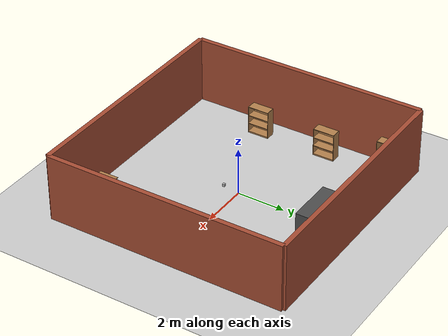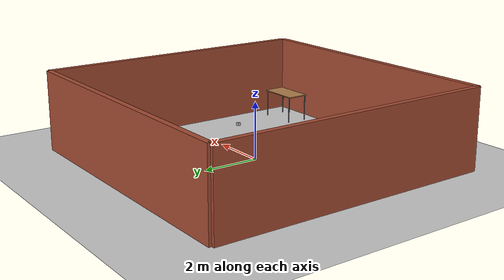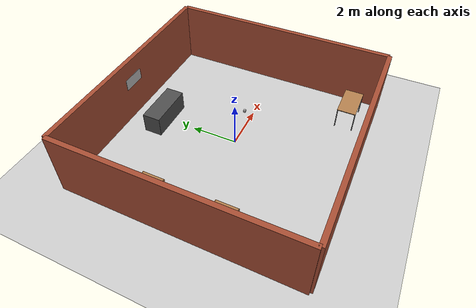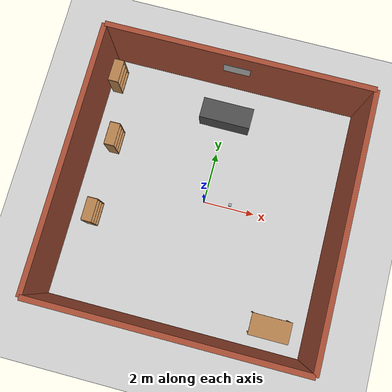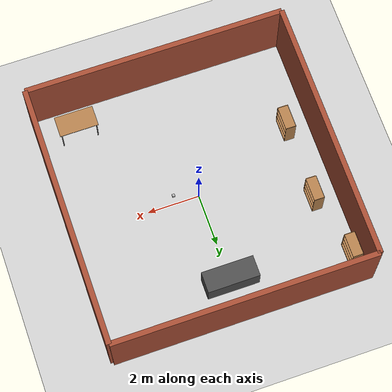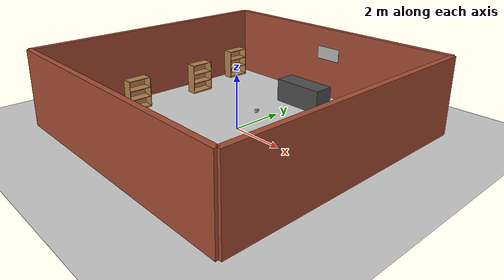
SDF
<sdf version="1.7">
 <world name="ufba_modificado">
  <light name="sun" type="directional">
   <pose>0 0 10 0 -0 0</pose>
   <diffuse>0.8 0.8 0.8 1</diffuse>
   <specular>0.2 0.2 0.2 1</specular>
   <attenuation>
    <range>1000</range>
    <constant>0.9</constant>
    <linear>0.01</linear>
    <quadratic>0.001</quadratic>
   </attenuation>
   <direction>-0.5 0.1 -0.9</direction>
   <spot><inner_angle>0</inner_angle><outer_angle>0</outer_angle><falloff>0</falloff></spot>
  </light>
  <physics type="ode">
   <max_step_size>0.002</max_step_size>
   <real_time_factor>1</real_time_factor>
   <real_time_update_rate>500</real_time_update_rate>
  </physics>
  <scene><ambient>0.4 0.4 0.4 1</ambient><background>0.7 0.7 0.7 1</background><shadows>1</shadows></scene>
  <model name="my_camera">
   <pose>1 0 1 0 0 0</pose>
   <static>true</static>
   <link name="link">
    <visual name="visual"><geometry><box><size>0.1 0.1 0.1</size></box></geometry></visual>
    <sensor name="camera" type="camera">
     <camera name="head">
      <horizontal_fov>1.3962634</horizontal_fov>
      <image><width>800</width><height>800</height><format>R8G8B8</format></image>
      <clip><near>0.02</near><far>300</far></clip>
     </camera>
     <plugin name="camera_controller" filename="libgazebo_ros_camera.so">
      <alwaysOn>true</alwaysOn>
      <updateRate>30.0</updateRate>
      <cameraName>my_camera</cameraName>
      <imageTopicName>image_raw</imageTopicName>
      <cameraInfoTopicName>camera_info</cameraInfoTopicName>
      <frameName>camera_link</frameName>
      <hackBaseline>0.07</hackBaseline>
      <distortionK1>0.0</distortionK1>
      <distortionK2>0.0</distortionK2>
      <distortionK3>0.0</distortionK3>
      <distortionT1>0.0</distortionT1>
      <distortionT2>0.0</distortionT2>
     </plugin>
    </sensor>
   </link>
  </model>
  <model name="ground_plane">
   <static>1</static>
   <link name="link">
    <collision name="collision">
     <geometry><plane><normal>0 0 1</normal><size>100 100</size></plane></geometry>
     <surface>
      <contact><collide_bitmask>65535</collide_bitmask></contact>
      <friction><ode><mu>100</mu><mu2>50</mu2></ode></friction>
     </surface>
    </collision>
    <visual name="visual">
     <cast_shadows>0</cast_shadows>
     <geometry><plane><normal>0 0 1</normal><size>100 100</size></plane></geometry>
     <material>
      <script><uri>file://media/materials/scripts/gazebo.material</uri><name>Gazebo/Grey</name></script>
     </material>
    </visual>
   </link>
  </model>
  <model name="parede_norte">
   <static>1</static>
   <pose>0 5 1.4 0 -0 0</pose>
   <link name="link">
    <collision name="collision"><geometry><box><size>10 0.2 2.8</size></box></geometry></collision>
    <visual name="visual">
     <geometry><box><size>10 0.2 2.8</size></box></geometry>
     <material>
      <script><uri>file://media/materials/scripts/gazebo.material</uri><name>Gazebo/Bricks</name></script>
     </material>
    </visual>
   </link>
  </model>
  <model name="parede_sul">
   <static>1</static>
   <pose>0 -5 1.4 0 -0 0</pose>
   <link name="link">
    <collision name="collision"><geometry><box><size>10 0.2 2.8</size></box></geometry></collision>
    <visual name="visual">
     <geometry><box><size>10 0.2 2.8</size></box></geometry>
     <material>
      <script><uri>file://media/materials/scripts/gazebo.material</uri><name>Gazebo/Bricks</name></script>
     </material>
    </visual>
   </link>
  </model>
  <model name="parede_leste">
   <static>1</static>
   <pose>5 0 1.4 0 -0 1.5707</pose>
   <link name="link">
    <collision name="collision"><geometry><box><size>10 0.2 2.8</size></box></geometry></collision>
    <visual name="visual">
     <geometry><box><size>10 0.2 2.8</size></box></geometry>
     <material>
      <script><uri>file://media/materials/scripts/gazebo.material</uri><name>Gazebo/Bricks</name></script>
     </material>
    </visual>
   </link>
  </model>
  <model name="parede_oeste">
   <static>1</static>
   <pose>-5 0 1.4 0 -0 1.5707</pose>
   <link name="link">
    <collision name="collision"><geometry><box><size>10 0.2 2.8</size></box></geometry></collision>
    <visual name="visual">
     <geometry><box><size>10 0.2 2.8</size></box></geometry>
     <material>
      <script><uri>file://media/materials/scripts/gazebo.material</uri><name>Gazebo/Bricks</name></script>
     </material>
    </visual>
   </link>
  </model>
  <model name="bancada_robo">
   <static>1</static>
   <pose>0 3.5 0.45 0 -0 3.1415</pose>
   <link name="link">
    <collision name="collision"><geometry><box><size>2 0.8 0.9</size></box></geometry></collision>
    <visual name="visual">
     <geometry><box><size>2 0.8 0.9</size></box></geometry>
     <material>
      <script><uri>file://media/materials/scripts/gazebo.material</uri><name>Gazebo/DarkGrey</name></script>
     </material>
    </visual>
   </link>
  </model>
  <model name="prateleira_1">
   <static>1</static>
   <link name="link">
    <inertial><mass>1</mass></inertial>
    <collision name="back">
     <pose>0 0.005 0.6 0 -0 0</pose>
     <geometry><box><size>0.9 0.01 1.2</size></box></geometry>
    </collision>
    <visual name="visual1">
     <pose>0 0.005 0.6 0 -0 0</pose>
     <geometry><box><size>0.9 0.01 1.2</size></box></geometry>
     <material>
      <script><uri>file://media/materials/scripts/gazebo.material</uri><name>Gazebo/Wood</name></script>
     </material>
    </visual>
    <collision name="left_side">
     <pose>0.45 -0.195 0.6 0 -0 0</pose>
     <geometry><box><size>0.02 0.4 1.2</size></box></geometry>
    </collision>
    <visual name="visual2">
     <pose>0.45 -0.195 0.6 0 -0 0</pose>
     <geometry><box><size>0.02 0.4 1.2</size></box></geometry>
     <material>
      <script><uri>file://media/materials/scripts/gazebo.material</uri><name>Gazebo/Wood</name></script>
     </material>
    </visual>
    <collision name="right_side">
     <pose>-0.45 -0.195 0.6 0 -0 0</pose>
     <geometry><box><size>0.02 0.4 1.2</size></box></geometry>
    </collision>
    <visual name="visual3">
     <pose>-0.45 -0.195 0.6 0 -0 0</pose>
     <geometry><box><size>0.02 0.4 1.2</size></box></geometry>
     <material>
      <script><uri>file://media/materials/scripts/gazebo.material</uri><name>Gazebo/Wood</name></script>
     </material>
    </visual>
    <collision name="bottom">
     <pose>0 -0.195 0.03 0 -0 0</pose>
     <geometry><box><size>0.88 0.4 0.06</size></box></geometry>
    </collision>
    <visual name="visual4">
     <pose>0 -0.195 0.03 0 -0 0</pose>
     <geometry><box><size>0.88 0.4 0.06</size></box></geometry>
     <material>
      <script><uri>file://media/materials/scripts/gazebo.material</uri><name>Gazebo/Wood</name></script>
     </material>
    </visual>
    <collision name="top">
     <pose>0 -0.195 1.19 0 -0 0</pose>
     <geometry><box><size>0.88 0.4 0.02</size></box></geometry>
    </collision>
    <visual name="visual5">
     <pose>0 -0.195 1.19 0 -0 0</pose>
     <geometry><box><size>0.88 0.4 0.02</size></box></geometry>
     <material>
      <script><uri>file://media/materials/scripts/gazebo.material</uri><name>Gazebo/Wood</name></script>
     </material>
    </visual>
    <collision name="low_shelf">
     <pose>0 -0.195 0.43 0 -0 0</pose>
     <geometry><box><size>0.88 0.4 0.02</size></box></geometry>
    </collision>
    <visual name="visual6">
     <pose>0 -0.195 0.43 0 -0 0</pose>
     <geometry><box><size>0.88 0.4 0.02</size></box></geometry>
     <material>
      <script><uri>file://media/materials/scripts/gazebo.material</uri><name>Gazebo/Wood</name></script>
     </material>
    </visual>
    <collision name="high_shelf">
     <pose>0 -0.195 0.8 0 -0 0</pose>
     <geometry><box><size>0.88 0.4 0.02</size></box></geometry>
    </collision>
    <visual name="visual7">
     <pose>0 -0.195 0.8 0 -0 0</pose>
     <geometry><box><size>0.88 0.4 0.02</size></box></geometry>
     <material>
      <script><uri>file://media/materials/scripts/gazebo.material</uri><name>Gazebo/Wood</name></script>
     </material>
    </visual>
   </link>
   <pose>-4.2 1.5 0 0 -0 1.5707</pose>
  </model>
  <model name="prateleira_2">
   <static>1</static>
   <link name="link">
    <inertial><mass>1</mass></inertial>
    <collision name="back">
     <pose>0 0.005 0.6 0 -0 0</pose>
     <geometry><box><size>0.9 0.01 1.2</size></box></geometry>
    </collision>
    <visual name="visual1">
     <pose>0 0.005 0.6 0 -0 0</pose>
     <geometry><box><size>0.9 0.01 1.2</size></box></geometry>
     <material>
      <script><uri>file://media/materials/scripts/gazebo.material</uri><name>Gazebo/Wood</name></script>
     </material>
    </visual>
    <collision name="left_side">
     <pose>0.45 -0.195 0.6 0 -0 0</pose>
     <geometry><box><size>0.02 0.4 1.2</size></box></geometry>
    </collision>
    <visual name="visual2">
     <pose>0.45 -0.195 0.6 0 -0 0</pose>
     <geometry><box><size>0.02 0.4 1.2</size></box></geometry>
     <material>
      <script><uri>file://media/materials/scripts/gazebo.material</uri><name>Gazebo/Wood</name></script>
     </material>
    </visual>
    <collision name="right_side">
     <pose>-0.45 -0.195 0.6 0 -0 0</pose>
     <geometry><box><size>0.02 0.4 1.2</size></box></geometry>
    </collision>
    <visual name="visual3">
     <pose>-0.45 -0.195 0.6 0 -0 0</pose>
     <geometry><box><size>0.02 0.4 1.2</size></box></geometry>
     <material>
      <script><uri>file://media/materials/scripts/gazebo.material</uri><name>Gazebo/Wood</name></script>
     </material>
    </visual>
    <collision name="bottom">
     <pose>0 -0.195 0.03 0 -0 0</pose>
     <geometry><box><size>0.88 0.4 0.06</size></box></geometry>
    </collision>
    <visual name="visual4">
     <pose>0 -0.195 0.03 0 -0 0</pose>
     <geometry><box><size>0.88 0.4 0.06</size></box></geometry>
     <material>
      <script><uri>file://media/materials/scripts/gazebo.material</uri><name>Gazebo/Wood</name></script>
     </material>
    </visual>
    <collision name="top">
     <pose>0 -0.195 1.19 0 -0 0</pose>
     <geometry><box><size>0.88 0.4 0.02</size></box></geometry>
    </collision>
    <visual name="visual5">
     <pose>0 -0.195 1.19 0 -0 0</pose>
     <geometry><box><size>0.88 0.4 0.02</size></box></geometry>
     <material>
      <script><uri>file://media/materials/scripts/gazebo.material</uri><name>Gazebo/Wood</name></script>
     </material>
    </visual>
    <collision name="low_shelf">
     <pose>0 -0.195 0.43 0 -0 0</pose>
     <geometry><box><size>0.88 0.4 0.02</size></box></geometry>
    </collision>
    <visual name="visual6">
     <pose>0 -0.195 0.43 0 -0 0</pose>
     <geometry><box><size>0.88 0.4 0.02</size></box></geometry>
     <material>
      <script><uri>file://media/materials/scripts/gazebo.material</uri><name>Gazebo/Wood</name></script>
     </material>
    </visual>
    <collision name="high_shelf">
     <pose>0 -0.195 0.8 0 -0 0</pose>
     <geometry><box><size>0.88 0.4 0.02</size></box></geometry>
    </collision>
    <visual name="visual7">
     <pose>0 -0.195 0.8 0 -0 0</pose>
     <geometry><box><size>0.88 0.4 0.02</size></box></geometry>
     <material>
      <script><uri>file://media/materials/scripts/gazebo.material</uri><name>Gazebo/Wood</name></script>
     </material>
    </visual>
   </link>
   <pose>-4.2 -1.5 0 0 -0 1.5707</pose>
  </model>
  <model name="mesa_escritorio">
   <static>1</static>
   <link name="link">
    <collision name="surface">
     <pose>0 0 1 0 -0 0</pose>
     <geometry><box><size>1.5 0.8 0.03</size></box></geometry>
     <surface><friction><ode><mu>0.6</mu><mu2>0.6</mu2></ode></friction></surface>
    </collision>
    <visual name="visual1">
     <pose>0 0 1 0 -0 0</pose>
     <geometry><box><size>1.5 0.8 0.03</size></box></geometry>
     <material>
      <script><uri>file://media/materials/scripts/gazebo.material</uri><name>Gazebo/Wood</name></script>
     </material>
    </visual>
    <collision name="front_left_leg">
     <pose>0.68 0.38 0.5 0 -0 0</pose>
     <geometry><cylinder><radius>0.02</radius><length>1</length></cylinder></geometry>
    </collision>
    <visual name="front_left_leg">
     <pose>0.68 0.38 0.5 0 -0 0</pose>
     <geometry><cylinder><radius>0.02</radius><length>1</length></cylinder></geometry>
     <material>
      <script><uri>file://media/materials/scripts/gazebo.material</uri><name>Gazebo/Grey</name></script>
     </material>
    </visual>
    <collision name="front_right_leg">
     <pose>0.68 -0.38 0.5 0 -0 0</pose>
     <geometry><cylinder><radius>0.02</radius><length>1</length></cylinder></geometry>
    </collision>
    <visual name="front_right_leg">
     <pose>0.68 -0.38 0.5 0 -0 0</pose>
     <geometry><cylinder><radius>0.02</radius><length>1</length></cylinder></geometry>
     <material>
      <script><uri>file://media/materials/scripts/gazebo.material</uri><name>Gazebo/Grey</name></script>
     </material>
    </visual>
    <collision name="back_right_leg">
     <pose>-0.68 -0.38 0.5 0 -0 0</pose>
     <geometry><cylinder><radius>0.02</radius><length>1</length></cylinder></geometry>
    </collision>
    <visual name="back_right_leg">
     <pose>-0.68 -0.38 0.5 0 -0 0</pose>
     <geometry><cylinder><radius>0.02</radius><length>1</length></cylinder></geometry>
     <material>
      <script><uri>file://media/materials/scripts/gazebo.material</uri><name>Gazebo/Grey</name></script>
     </material>
    </visual>
    <collision name="back_left_leg">
     <pose>-0.68 0.38 0.5 0 -0 0</pose>
     <geometry><cylinder><radius>0.02</radius><length>1</length></cylinder></geometry>
    </collision>
    <visual name="back_left_leg">
     <pose>-0.68 0.38 0.5 0 -0 0</pose>
     <geometry><cylinder><radius>0.02</radius><length>1</length></cylinder></geometry>
     <material>
      <script><uri>file://media/materials/scripts/gazebo.material</uri><name>Gazebo/Grey</name></script>
     </material>
    </visual>
   </link>
   <pose>3.5 -4 0 0 -0 0</pose>
  </model>
  <model name="placa_ufba_na_parede">
   <static>1</static>
   <pose>0 4.89 1.8 0 -0 0</pose>
   <link name="link">
    <visual name="visual">
     <geometry><box><size>1.024 0.01 0.512</size></box></geometry>
     <material>
      <script><uri>file://materials/scripts/ufba_logo.material</uri><name>Ufba/Logo</name></script>
     </material>
    </visual>
   </link>
  </model>
  <gravity>0 0 -9.8</gravity>
  <magnetic_field>6e-06 2.3e-05 -4.2e-05</magnetic_field>
  <atmosphere type="adiabatic"/>
  <spherical_coordinates>
   <surface_model>EARTH_WGS84</surface_model>
   <latitude_deg>0</latitude_deg>
   <longitude_deg>0</longitude_deg>
   <elevation>0</elevation>
   <heading_deg>0</heading_deg>
  </spherical_coordinates>
  <model name="prateleira_1_clone">
   <static>1</static>
   <link name="link">
    <inertial><mass>1</mass></inertial>
    <collision name="back">
     <pose>0 0.005 0.6 0 -0 0</pose>
     <geometry><box><size>0.9 0.01 1.2</size></box></geometry>
    </collision>
    <visual name="visual1">
     <pose>0 0.005 0.6 0 -0 0</pose>
     <geometry><box><size>0.9 0.01 1.2</size></box></geometry>
     <material>
      <script><uri>file://media/materials/scripts/gazebo.material</uri><name>Gazebo/Wood</name></script>
     </material>
    </visual>
    <collision name="left_side">
     <pose>0.45 -0.195 0.6 0 -0 0</pose>
     <geometry><box><size>0.02 0.4 1.2</size></box></geometry>
    </collision>
    <visual name="visual2">
     <pose>0.45 -0.195 0.6 0 -0 0</pose>
     <geometry><box><size>0.02 0.4 1.2</size></box></geometry>
     <material>
      <script><uri>file://media/materials/scripts/gazebo.material</uri><name>Gazebo/Wood</name></script>
     </material>
    </visual>
    <collision name="right_side">
     <pose>-0.45 -0.195 0.6 0 -0 0</pose>
     <geometry><box><size>0.02 0.4 1.2</size></box></geometry>
    </collision>
    <visual name="visual3">
     <pose>-0.45 -0.195 0.6 0 -0 0</pose>
     <geometry><box><size>0.02 0.4 1.2</size></box></geometry>
     <material>
      <script><uri>file://media/materials/scripts/gazebo.material</uri><name>Gazebo/Wood</name></script>
     </material>
    </visual>
    <collision name="bottom">
     <pose>0 -0.195 0.03 0 -0 0</pose>
     <geometry><box><size>0.88 0.4 0.06</size></box></geometry>
    </collision>
    <visual name="visual4">
     <pose>0 -0.195 0.03 0 -0 0</pose>
     <geometry><box><size>0.88 0.4 0.06</size></box></geometry>
     <material>
      <script><uri>file://media/materials/scripts/gazebo.material</uri><name>Gazebo/Wood</name></script>
     </material>
    </visual>
    <collision name="top">
     <pose>0 -0.195 1.19 0 -0 0</pose>
     <geometry><box><size>0.88 0.4 0.02</size></box></geometry>
    </collision>
    <visual name="visual5">
     <pose>0 -0.195 1.19 0 -0 0</pose>
     <geometry><box><size>0.88 0.4 0.02</size></box></geometry>
     <material>
      <script><uri>file://media/materials/scripts/gazebo.material</uri><name>Gazebo/Wood</name></script>
     </material>
    </visual>
    <collision name="low_shelf">
     <pose>0 -0.195 0.43 0 -0 0</pose>
     <geometry><box><size>0.88 0.4 0.02</size></box></geometry>
    </collision>
    <visual name="visual6">
     <pose>0 -0.195 0.43 0 -0 0</pose>
     <geometry><box><size>0.88 0.4 0.02</size></box></geometry>
     <material>
      <script><uri>file://media/materials/scripts/gazebo.material</uri><name>Gazebo/Wood</name></script>
     </material>
    </visual>
    <collision name="high_shelf">
     <pose>0 -0.195 0.8 0 -0 0</pose>
     <geometry><box><size>0.88 0.4 0.02</size></box></geometry>
    </collision>
    <visual name="visual7">
     <pose>0 -0.195 0.8 0 -0 0</pose>
     <geometry><box><size>0.88 0.4 0.02</size></box></geometry>
     <material>
      <script><uri>file://media/materials/scripts/gazebo.material</uri><name>Gazebo/Wood</name></script>
     </material>
    </visual>
   </link>
   <pose>-4.76009 3.98886 0 0 -0 1.5707</pose>
  </model>
 </world>
</sdf>
